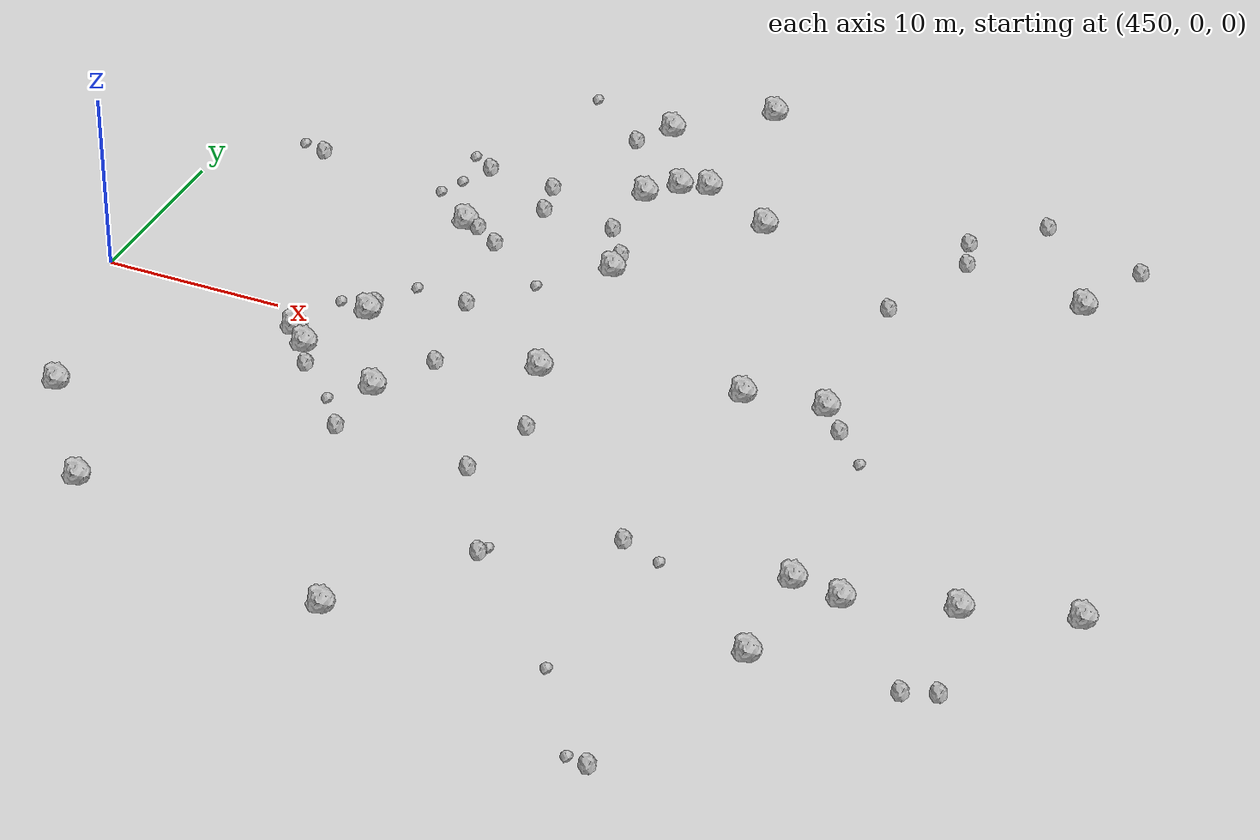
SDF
<sdf version="1.6">
 <world name="default">
  <include><uri>model://sun</uri></include>
  <model name="rock1_12_3">
   <include><uri>model://rock1</uri><pose>489.88870288233954 2.8784562996880183 0.5 0 0 0</pose></include>
  </model>
  <model name="rock1_12_4">
   <include><uri>model://rock1</uri><pose>493.79320112154664 -11.018908186240903 0.5 0 0 0</pose></include>
  </model>
  <model name="rock1_12_5">
   <include><uri>model://rock1</uri><pose>458.30051823748977 -17.92146473024402 0.5 0 0 0</pose></include>
  </model>
  <model name="rock1_12_6">
   <include><uri>model://rock1</uri><pose>476.2103878176577 19.61659919144988 0.5 0 0 0</pose></include>
  </model>
  <model name="rock1_12_7">
   <include><uri>model://rock1</uri><pose>474.08787598587634 -22.126504715301706 0.5 0 0 0</pose></include>
  </model>
  <model name="rock1_12_8">
   <include><uri>model://rock1</uri><pose>474.710911484141 19.09043641636076 0.5 0 0 0</pose></include>
  </model>
  <model name="rock1_12_9">
   <include><uri>model://rock1</uri><pose>485.56639681082646 2.2589061153803485 0.5 0 0 0</pose></include>
  </model>
  <model name="rock1_12_10">
   <include><uri>model://rock1</uri><pose>461.9439058857172 -1.7579969044924368 0.5 0 0 0</pose></include>
  </model>
  <model name="rock1_12_11">
   <include><uri>model://rock1</uri><pose>463.1170716087133 -2.9302596340146394 0.5 0 0 0</pose></include>
  </model>
  <model name="rock1_12_12">
   <include><uri>model://rock1</uri><pose>476.5059080250963 28.24274794526633 0.5 0 0 0</pose></include>
  </model>
  <model name="rock1_12_13">
   <include><uri>model://rock1</uri><pose>507.50971250341127 -8.234604936370342 0.5 0 0 0</pose></include>
  </model>
  <model name="rock1_12_14">
   <include><uri>model://rock1</uri><pose>498.6978979470255 16.973165180418512 0.5 0 0 0</pose></include>
  </model>
  <model name="rock1_12_15">
   <include><uri>model://rock1</uri><pose>468.12224131075465 -4.935912952894519 0.5 0 0 0</pose></include>
  </model>
  <model name="rock1_12_16">
   <include><uri>model://rock1</uri><pose>471.9689363987963 24.33457994323018 0.5 0 0 0</pose></include>
  </model>
  <model name="rock1_12_17">
   <include><uri>model://rock1</uri><pose>464.76022735744345 1.1273779930036802 0.5 0 0 0</pose></include>
  </model>
  <model name="rock1_12_18">
   <include><uri>model://rock1</uri><pose>474.73621541428565 10.081725884507925 0.5 0 0 0</pose></include>
  </model>
  <model name="rock1_12_19">
   <include><uri>model://rock1</uri><pose>473.28608146369356 17.593960707072092 0.5 0 0 0</pose></include>
  </model>
  <model name="rock1_12_20">
   <include><uri>model://rock1</uri><pose>453.1769220350533 -11.16640030648211 0.5 0 0 0</pose></include>
  </model>
  <model name="rock1_12_21">
   <include><uri>model://rock1</uri><pose>465.6296277789392 11.017184194482667 0.5 0 0 0</pose></include>
  </model>
  <model name="rock1_12_22">
   <include><uri>model://rock1</uri><pose>480.4654036419727 17.306364235348013 0.5 0 0 0</pose></include>
  </model>
  <model name="rock1_12_23">
   <include><uri>model://rock1</uri><pose>475.129253580235 0.1313875486802445 0.5 0 0 0</pose></include>
  </model>
  <model name="rock1_12_24">
   <include><uri>model://rock1</uri><pose>494.0242266174193 -17.170384040995373 0.5 0 0 0</pose></include>
  </model>
  <model name="rock1_12_25">
   <include><uri>model://rock1</uri><pose>501.8953632653927 -9.888970654005817 0.5 0 0 0</pose></include>
  </model>
  <model name="rock1_12_26">
   <include><uri>model://rock1</uri><pose>496.46853271231515 -11.475724312821775 0.5 0 0 0</pose></include>
  </model>
  <model name="rock2_12_0">
   <include><uri>model://rock2</uri><pose>468.95675140987015 13.933774993808512 0.3 0 0 0</pose></include>
  </model>
  <model name="rock2_12_1">
   <include><uri>model://rock2</uri><pose>467.95993912404197 9.850755239268423 0.3 0 0 0</pose></include>
  </model>
  <model name="rock2_12_2">
   <include><uri>model://rock2</uri><pose>503.25747442298336 -16.21841242119634 0.3 0 0 0</pose></include>
  </model>
  <model name="rock2_12_3">
   <include><uri>model://rock2</uri><pose>491.6875411143309 18.33844044737951 0.3 0 0 0</pose></include>
  </model>
  <model name="rock2_12_4">
   <include><uri>model://rock2</uri><pose>489.43125873884435 12.662479578898086 0.3 0 0 0</pose></include>
  </model>
  <model name="rock2_12_5">
   <include><uri>model://rock2</uri><pose>464.5130933235649 16.52859102185306 0.3 0 0 0</pose></include>
  </model>
  <model name="rock2_12_6">
   <include><uri>model://rock2</uri><pose>470.627404195197 22.456334789462154 0.3 0 0 0</pose></include>
  </model>
  <model name="rock2_12_7">
   <include><uri>model://rock2</uri><pose>476.7522522108903 -4.808850967235294 0.3 0 0 0</pose></include>
  </model>
  <model name="rock2_12_8">
   <include><uri>model://rock2</uri><pose>473.1182244621843 13.729301182448921 0.3 0 0 0</pose></include>
  </model>
  <model name="rock2_12_9">
   <include><uri>model://rock2</uri><pose>467.9423044058567 -8.65134419377442 0.3 0 0 0</pose></include>
  </model>
  <model name="rock2_12_10">
   <include><uri>model://rock2</uri><pose>468.46105221765475 16.13609242794538 0.3 0 0 0</pose></include>
  </model>
  <model name="rock2_12_11">
   <include><uri>model://rock2</uri><pose>501.6016183826432 -16.834751968907373 0.3 0 0 0</pose></include>
  </model>
  <model name="rock2_12_12">
   <include><uri>model://rock2</uri><pose>474.5644186581032 11.578446015754842 0.3 0 0 0</pose></include>
  </model>
  <model name="rock2_12_13">
   <include><uri>model://rock2</uri><pose>469.9835579666785 -1.4806215994177414 0.3 0 0 0</pose></include>
  </model>
  <model name="rock2_12_14">
   <include><uri>model://rock2</uri><pose>479.06756098953986 -15.181939287533046 0.3 0 0 0</pose></include>
  </model>
  <model name="rock2_12_15">
   <include><uri>model://rock2</uri><pose>475.56469170338255 -9.15514786117502 0.3 0 0 0</pose></include>
  </model>
  <model name="rock2_12_16">
   <include><uri>model://rock2</uri><pose>485.09482769104284 -11.428067175441523 0.3 0 0 0</pose></include>
  </model>
  <model name="rock2_12_17">
   <include><uri>model://rock2</uri><pose>469.1021720257098 4.023149240491371 0.3 0 0 0</pose></include>
  </model>
  <model name="rock2_12_18">
   <include><uri>model://rock2</uri><pose>464.74191940778616 2.095510598205003 0.3 0 0 0</pose></include>
  </model>
  <model name="rock2_12_19">
   <include><uri>model://rock2</uri><pose>491.0858673659132 20.246171125279318 0.3 0 0 0</pose></include>
  </model>
  <model name="rock2_12_20">
   <include><uri>model://rock2</uri><pose>463.9845721176795 -4.3805362929253135 0.3 0 0 0</pose></include>
  </model>
  <model name="rock2_12_21">
   <include><uri>model://rock2</uri><pose>455.3646572061418 14.337417439850256 0.3 0 0 0</pose></include>
  </model>
  <model name="rock2_12_22">
   <include><uri>model://rock2</uri><pose>494.3850122555258 23.491711083601345 0.3 0 0 0</pose></include>
  </model>
  <model name="rock2_12_23">
   <include><uri>model://rock2</uri><pose>491.2325308101976 1.352220412820106 0.3 0 0 0</pose></include>
  </model>
  <model name="rock2_12_24">
   <include><uri>model://rock2</uri><pose>500.3755342637837 21.291697570904986 0.3 0 0 0</pose></include>
  </model>
  <model name="rock2_12_25">
   <include><uri>model://rock2</uri><pose>466.44789621596317 10.896269929567701 0.3 0 0 0</pose></include>
  </model>
  <model name="rock2_12_26">
   <include><uri>model://rock2</uri><pose>490.58624771345757 -27.61438545235688 0.3 0 0 0</pose></include>
  </model>
  <model name="rock3_12_0">
   <include><uri>model://rock3</uri><pose>493.14148803871694 -0.8532908817944111 0.2 0 0 0</pose></include>
  </model>
  <model name="rock3_12_1">
   <include><uri>model://rock3</uri><pose>471.64640303637003 7.051753503729159 0.2 0 0 0</pose></include>
  </model>
  <model name="rock3_12_2">
   <include><uri>model://rock3</uri><pose>485.8301067239479 -22.004141541112425 0.2 0 0 0</pose></include>
  </model>
  <model name="rock3_12_3">
   <include><uri>model://rock3</uri><pose>487.321559194317 -12.335768545657842 0.2 0 0 0</pose></include>
  </model>
  <model name="rock3_12_4">
   <include><uri>model://rock3</uri><pose>463.61964485222416 14.716129696204355 0.2 0 0 0</pose></include>
  </model>
  <model name="rock3_12_5">
   <include><uri>model://rock3</uri><pose>466.77429628629136 25.623686472122934 0.2 0 0 0</pose></include>
  </model>
  <model name="rock3_12_6">
   <include><uri>model://rock3</uri><pose>462.95951847182994 1.5053374321479325 0.2 0 0 0</pose></include>
  </model>
  <model name="rock3_12_7">
   <include><uri>model://rock3</uri><pose>466.04384228966904 4.271894267946294 0.2 0 0 0</pose></include>
  </model>
  <model name="rock3_12_8">
   <include><uri>model://rock3</uri><pose>463.1665678626799 17.334909224620127 0.2 0 0 0</pose></include>
  </model>
  <model name="rock3_12_9">
   <include><uri>model://rock3</uri><pose>453.95118457162977 14.696983645644295 0.2 0 0 0</pose></include>
  </model>
  <model name="rock3_12_10">
   <include><uri>model://rock3</uri><pose>479.2939626104784 -14.71695604516394 0.2 0 0 0</pose></include>
  </model>
  <model name="rock3_12_11">
   <include><uri>model://rock3</uri><pose>466.361446086599 -6.677034509331229 0.2 0 0 0</pose></include>
  </model>
  <model name="rock3_12_12">
   <include><uri>model://rock3</uri><pose>462.9931780047143 13.327885513232587 0.2 0 0 0</pose></include>
  </model>
  <model name="rock3_12_13">
   <include><uri>model://rock3</uri><pose>489.39996005467765 -27.440602794582723 0.2 0 0 0</pose></include>
  </model>
 </world>
</sdf>
